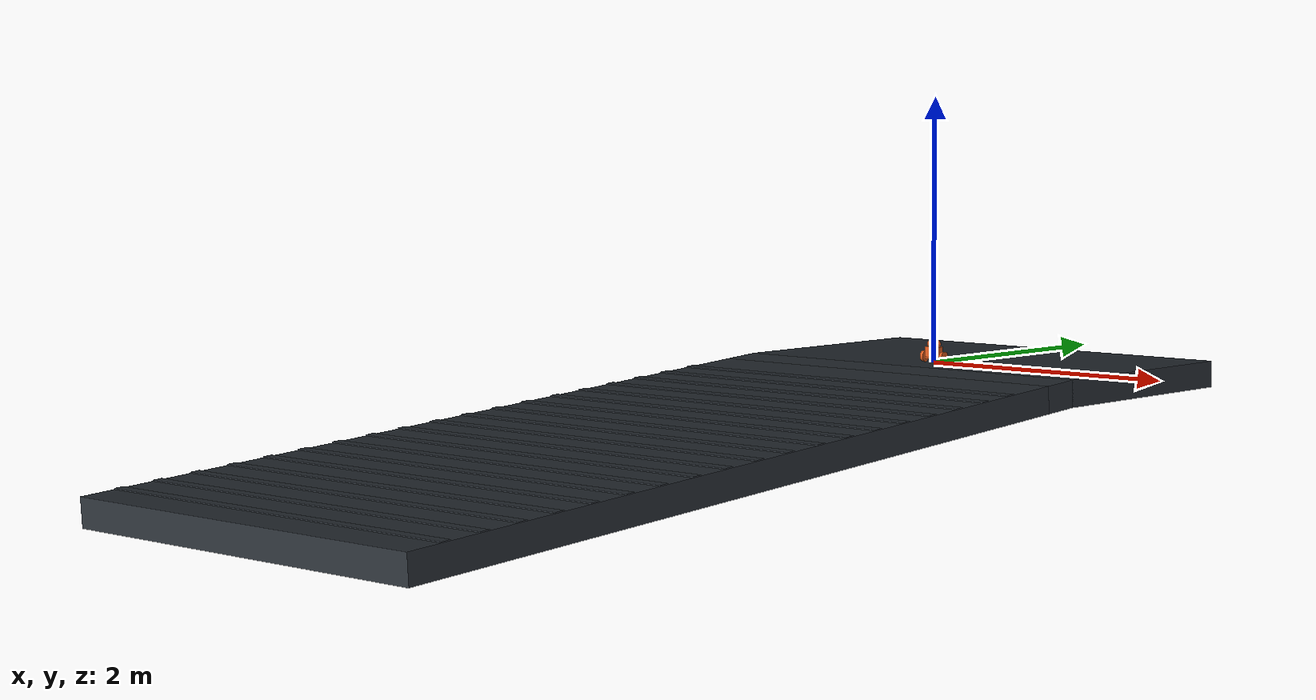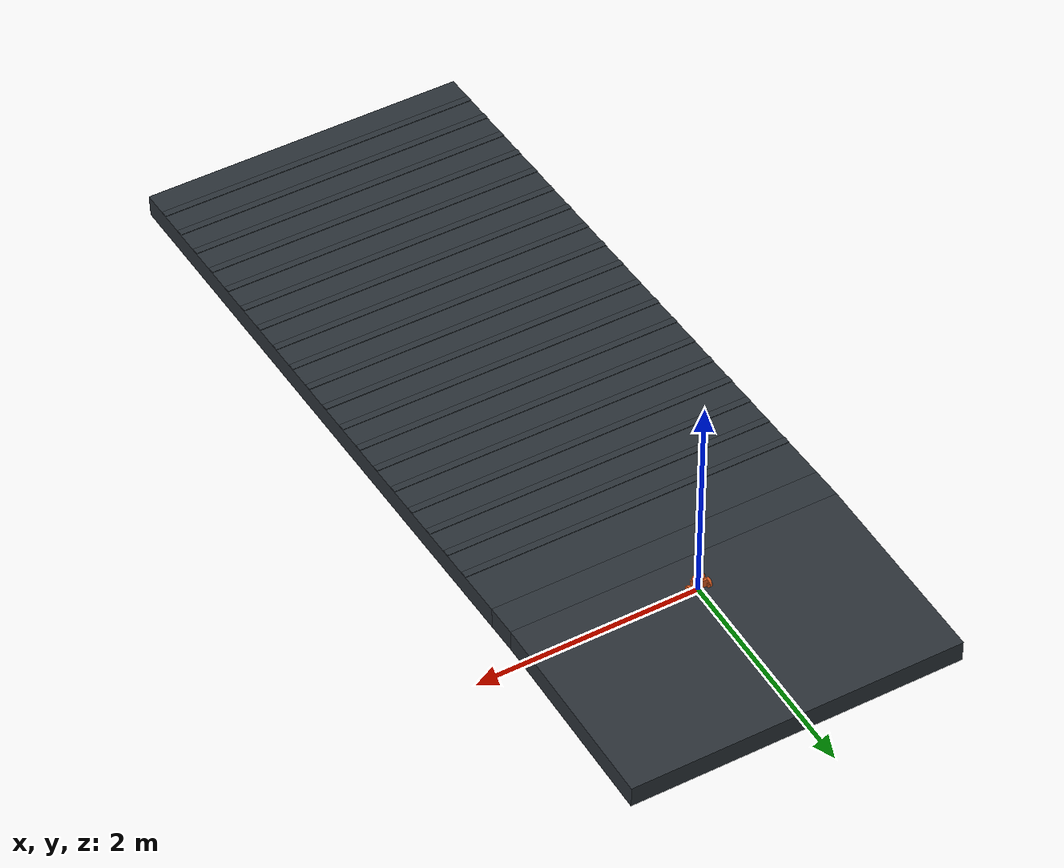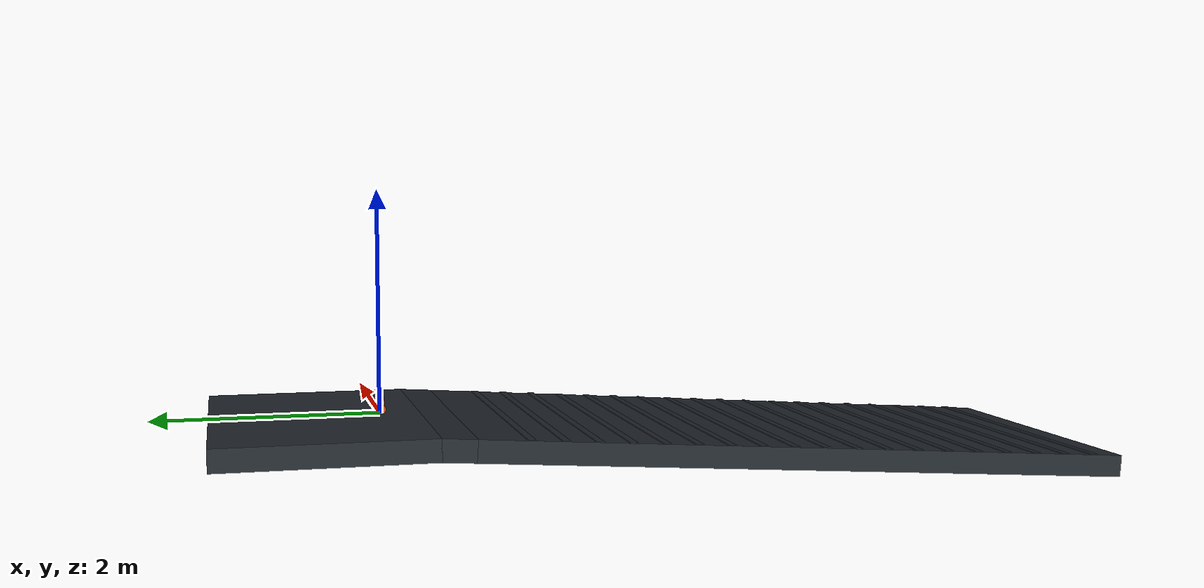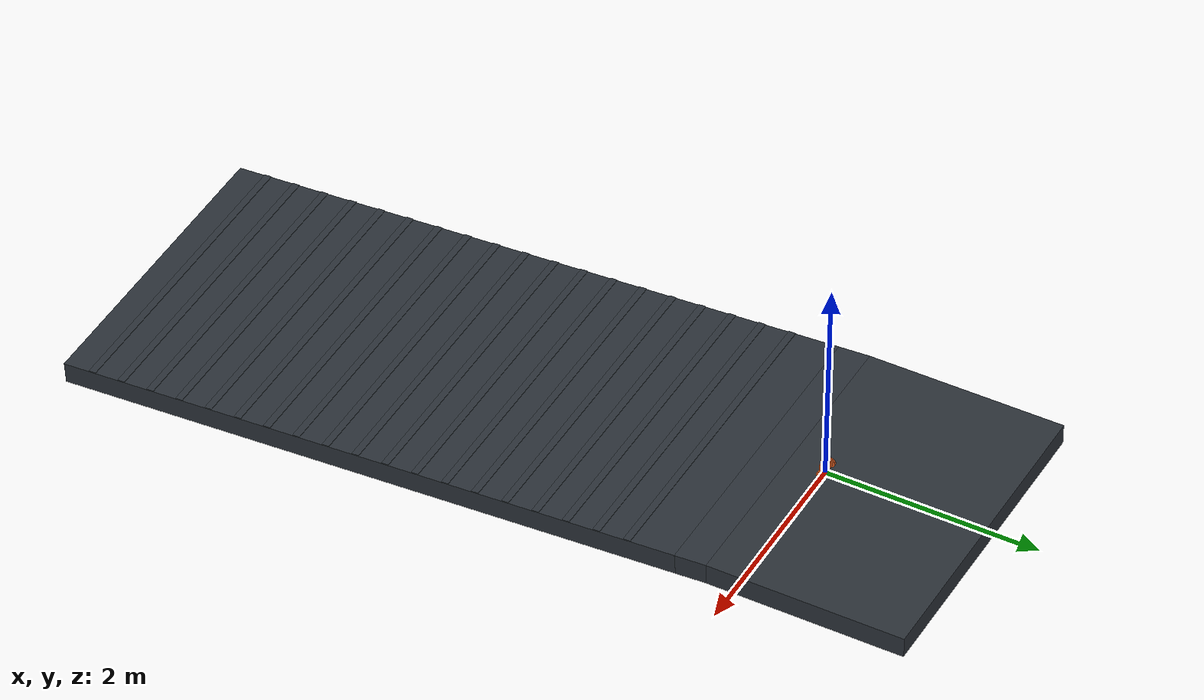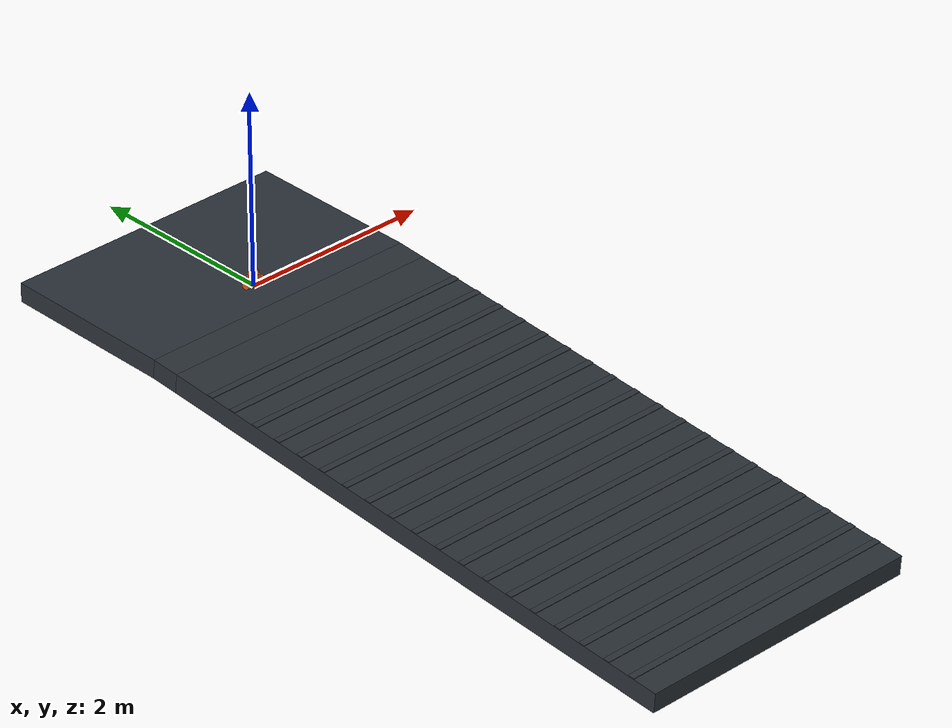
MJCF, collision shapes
<mujoco model="Stage4B rtrain_022_m04p0">
  <compiler angle="radian" meshdir="../../../../assets/upstream_local" />
  <option timestep="0.001" integrator="implicitfast" gravity="0 0 -9.81" />
  <statistic center="0 0 0.05" extent="0.28" />
  <default>
    <default class="visual">
      <geom contype="0" conaffinity="0" group="2" />
    </default>
    <default class="collision">
      <geom group="3" rgba="0.85 0.35 0.12 0.25" solref="0.005 1" solimp="0.9 0.95 0.001" />
    </default>
  </default>
  <asset>
    <texture name="ground_tex" type="2d" builtin="checker" rgb1="0.22 0.25 0.28" rgb2="0.12 0.14 0.16" width="256" height="256" />
    <material name="ground_mat" texture="ground_tex" texrepeat="4 4" reflectance="0.15" />
    <mesh name="main_frame_mesh" file="main_frame.stl" scale="0.001 0.001 0.001" />
    <mesh name="wheel_base_mesh" file="wheel_base.stl" scale="0.001 0.001 0.001" />
    <mesh name="cover_mesh" file="cover.stl" scale="0.001 0.001 0.001" />
    <mesh name="motor_left_mesh" file="motor_left.stl" scale="0.001 0.001 0.001" />
    <mesh name="motor_right_mesh" file="motor_right.stl" scale="0.001 0.001 0.001" />
    <mesh name="mc33926_mesh" file="mc33926.stl" scale="0.001 0.001 0.001" />
    <mesh name="wheel_mesh" file="wheel.stl" scale="0.001 0.001 0.001" />
    <mesh name="adapter_left_mesh" file="adapter_left.stl" scale="0.001 0.001 0.001" />
    <mesh name="adapter_right_mesh" file="adapter_right.stl" scale="0.001 0.001 0.001" />
  </asset>
  <worldbody>
    <light pos="0 -0.5 0.8" dir="0 0.6 -1" diffuse="0.8 0.8 0.8" />
    <geom name="terrain_flat" type="box" pos="0 0.575 -0.1" size="1.5 0.925 0.1" material="ground_mat" friction="0.20473739 0.005 0.0001" condim="3" />
    <geom name="terrain_transition" type="box" pos="0 -0.492658960165 -0.110219876088" euler="0.0698131700798 0 0" size="1.5 0.15 0.1" material="ground_mat" friction="0.20473739 0.005 0.0001" condim="3" />
    <geom name="terrain_constant_grade" type="box" pos="0 -3.63498571848 -0.329952768382" euler="0.0698131700798 0 0" size="1.5 3 0.1" material="ground_mat" friction="0.20473739 0.005 0.0001" condim="3" />
    <geom name="terrain_rough_00" type="box" pos="0 -1.09843132794 -0.0486236327702" euler="0.0698131700798 0 0" size="1.5 0.0344620626166 0.00370274223192" material="ground_mat" friction="0.20473739 0.005 0.0001" condim="3" />
    <geom name="terrain_rough_01" type="box" pos="0 -1.39006321255 -0.0690165207224" euler="0.0698131700798 0 0" size="1.5 0.0344620626166 0.00370274223192" material="ground_mat" friction="0.20473739 0.005 0.0001" condim="3" />
    <geom name="terrain_rough_02" type="box" pos="0 -1.68169509717 -0.0894094086745" euler="0.0698131700798 0 0" size="1.5 0.0344620626166 0.00370274223192" material="ground_mat" friction="0.20473739 0.005 0.0001" condim="3" />
    <geom name="terrain_rough_03" type="box" pos="0 -1.97332698178 -0.109802296627" euler="0.0698131700798 0 0" size="1.5 0.0344620626166 0.00370274223192" material="ground_mat" friction="0.20473739 0.005 0.0001" condim="3" />
    <geom name="terrain_rough_04" type="box" pos="0 -2.2649588664 -0.130195184579" euler="0.0698131700798 0 0" size="1.5 0.0344620626166 0.00370274223192" material="ground_mat" friction="0.20473739 0.005 0.0001" condim="3" />
    <geom name="terrain_rough_05" type="box" pos="0 -2.55659075101 -0.150588072531" euler="0.0698131700798 0 0" size="1.5 0.0344620626166 0.00370274223192" material="ground_mat" friction="0.20473739 0.005 0.0001" condim="3" />
    <geom name="terrain_rough_06" type="box" pos="0 -2.84822263563 -0.170980960483" euler="0.0698131700798 0 0" size="1.5 0.0344620626166 0.00370274223192" material="ground_mat" friction="0.20473739 0.005 0.0001" condim="3" />
    <geom name="terrain_rough_07" type="box" pos="0 -3.13985452024 -0.191373848436" euler="0.0698131700798 0 0" size="1.5 0.0344620626166 0.00370274223192" material="ground_mat" friction="0.20473739 0.005 0.0001" condim="3" />
    <geom name="terrain_rough_08" type="box" pos="0 -3.43148640486 -0.211766736388" euler="0.0698131700798 0 0" size="1.5 0.0344620626166 0.00370274223192" material="ground_mat" friction="0.20473739 0.005 0.0001" condim="3" />
    <geom name="terrain_rough_09" type="box" pos="0 -3.72311828947 -0.23215962434" euler="0.0698131700798 0 0" size="1.5 0.0344620626166 0.00370274223192" material="ground_mat" friction="0.20473739 0.005 0.0001" condim="3" />
    <geom name="terrain_rough_10" type="box" pos="0 -4.01475017408 -0.252552512292" euler="0.0698131700798 0 0" size="1.5 0.0344620626166 0.00370274223192" material="ground_mat" friction="0.20473739 0.005 0.0001" condim="3" />
    <geom name="terrain_rough_11" type="box" pos="0 -4.3063820587 -0.272945400244" euler="0.0698131700798 0 0" size="1.5 0.0344620626166 0.00370274223192" material="ground_mat" friction="0.20473739 0.005 0.0001" condim="3" />
    <geom name="terrain_rough_12" type="box" pos="0 -4.59801394331 -0.293338288197" euler="0.0698131700798 0 0" size="1.5 0.0344620626166 0.00370274223192" material="ground_mat" friction="0.20473739 0.005 0.0001" condim="3" />
    <geom name="terrain_rough_13" type="box" pos="0 -4.88964582793 -0.313731176149" euler="0.0698131700798 0 0" size="1.5 0.0344620626166 0.00370274223192" material="ground_mat" friction="0.20473739 0.005 0.0001" condim="3" />
    <geom name="terrain_rough_14" type="box" pos="0 -5.18127771254 -0.334124064101" euler="0.0698131700798 0 0" size="1.5 0.0344620626166 0.00370274223192" material="ground_mat" friction="0.20473739 0.005 0.0001" condim="3" />
    <geom name="terrain_rough_15" type="box" pos="0 -5.47290959716 -0.354516952053" euler="0.0698131700798 0 0" size="1.5 0.0344620626166 0.00370274223192" material="ground_mat" friction="0.20473739 0.005 0.0001" condim="3" />
    <geom name="terrain_rough_16" type="box" pos="0 -5.76454148177 -0.374909840005" euler="0.0698131700798 0 0" size="1.5 0.0344620626166 0.00370274223192" material="ground_mat" friction="0.20473739 0.005 0.0001" condim="3" />
    <geom name="terrain_rough_17" type="box" pos="0 -6.05617336639 -0.395302727957" euler="0.0698131700798 0 0" size="1.5 0.0344620626166 0.00370274223192" material="ground_mat" friction="0.20473739 0.005 0.0001" condim="3" />
    <geom name="terrain_rough_18" type="box" pos="0 -6.347805251 -0.41569561591" euler="0.0698131700798 0 0" size="1.5 0.0344620626166 0.00370274223192" material="ground_mat" friction="0.20473739 0.005 0.0001" condim="3" />
    <body name="chassis" pos="0 0 0.043">
      <freejoint name="root" />
      <inertial pos="0.0001592717873 -0.001394466535 0.03368627387" mass="0.8173706489" fullinertia="0.0009508052638 0.001636345835 0.0009938057434 -1.163464906e-07 -4.840496598e-06 3.454944565e-05" />
      <geom name="main_frame_visual" class="visual" type="mesh" mesh="main_frame_mesh" rgba="0.12 0.42 0.72 1" />
      <geom name="wheel_base_visual" class="visual" type="mesh" mesh="wheel_base_mesh" rgba="0.95 0.50 0.10 1" />
      <geom name="cover_visual" class="visual" type="mesh" mesh="cover_mesh" rgba="0.18 0.72 0.32 0.72" />
      <geom name="motor_left_visual" class="visual" type="mesh" mesh="motor_left_mesh" rgba="0.45 0.47 0.50 1" />
      <geom name="motor_right_visual" class="visual" type="mesh" mesh="motor_right_mesh" rgba="0.45 0.47 0.50 1" />
      <geom name="mc33926_visual" class="visual" type="mesh" mesh="mc33926_mesh" rgba="0.08 0.36 0.18 1" />
      <geom name="battery_1_visual" class="visual" type="box" pos="0 -0.012 0.038" size="0.035 0.007 0.025" rgba="0.15 0.25 0.75 1" />
      <geom name="battery_2_visual" class="visual" type="box" pos="0 0.012 0.038" size="0.035 0.007 0.025" rgba="0.15 0.25 0.75 1" />
      <geom name="electronics_lump_visual" class="visual" type="box" pos="0 -0.024 0.067" size="0.035 0.006 0.0425" rgba="0.10 0.42 0.20 0.65" />
      <geom name="wheel_base_collision" class="collision" type="box" pos="0 0.0005 0.0042" size="0.074 0.0201 0.0198" />
      <geom name="lower_chassis_collision" class="collision" type="box" pos="0.001 -0.0015 0.038" size="0.0595 0.0325 0.038" />
      <geom name="upper_chassis_collision" class="collision" type="capsule" fromto="-0.024 -0.0015 0.096 0.026 -0.0015 0.096" size="0.033" />
      <site name="imu_site" type="box" pos="0 0 0.020" quat="1 0 0 0" size="0.004 0.003 0.001" rgba="1 0.15 0.05 1" />
      <body name="left_wheel" pos="-0.0885 0 0">
        <joint name="left_wheel_hinge" type="hinge" axis="1 0 0" damping="0.002" frictionloss="0.002" />
        <inertial pos="0.001407549168 -2.310217342e-08 4.024972882e-05" mass="0.1051" fullinertia="8.559060347e-05 4.760138372e-05 4.763051958e-05 2.677568832e-11 -3.525425309e-08 -1.463149106e-11" />
        <geom name="left_wheel_visual" class="visual" type="mesh" mesh="wheel_mesh" rgba="0.04 0.05 0.06 1" />
        <geom name="left_adapter_visual" class="visual" type="mesh" mesh="adapter_left_mesh" rgba="0.12 0.48 0.82 1" />
        <geom name="left_wheel_collision" class="collision" type="cylinder" size="0.042 0.012" quat="0.7071067812 0 0.7071067812 0" friction="0.20473739 0.005 0.0001" />
      </body>
      <body name="right_wheel" pos="0.0885 0 0">
        <joint name="right_wheel_hinge" type="hinge" axis="1 0 0" damping="0.002" frictionloss="0.002" />
        <inertial pos="-0.001407437868 -2.310217342e-08 -4.019113045e-05" mass="0.1051" fullinertia="8.559060397e-05 4.760141714e-05 4.763055251e-05 -2.601653908e-11 -3.526339188e-08 1.57007511e-11" />
        <geom name="right_wheel_visual" class="visual" type="mesh" mesh="wheel_mesh" rgba="0.04 0.05 0.06 1" />
        <geom name="right_adapter_visual" class="visual" type="mesh" mesh="adapter_right_mesh" rgba="0.12 0.48 0.82 1" />
        <geom name="right_wheel_collision" class="collision" type="cylinder" size="0.042 0.012" quat="0.7071067812 0 0.7071067812 0" friction="0.20473739 0.005 0.0001" />
      </body>
    </body>
  </worldbody>
  <actuator>
    <motor name="left_wheel_torque" joint="left_wheel_hinge" gear="1" ctrllimited="true" ctrlrange="-0.63 0.63" forcelimited="true" forcerange="-0.63 0.63" />
    <motor name="right_wheel_torque" joint="right_wheel_hinge" gear="1" ctrllimited="true" ctrlrange="-0.63 0.63" forcelimited="true" forcerange="-0.63 0.63" />
  </actuator>
  <sensor>
    <accelerometer name="imu_accelerometer" site="imu_site" />
    <gyro name="imu_gyro" site="imu_site" />
    <jointpos name="left_wheel_angle" joint="left_wheel_hinge" />
    <jointpos name="right_wheel_angle" joint="right_wheel_hinge" />
  </sensor>
  <keyframe>
    <key name="upright" qpos="0 0 0.043 1 0 0 0 0 0" />
  </keyframe>
</mujoco>
